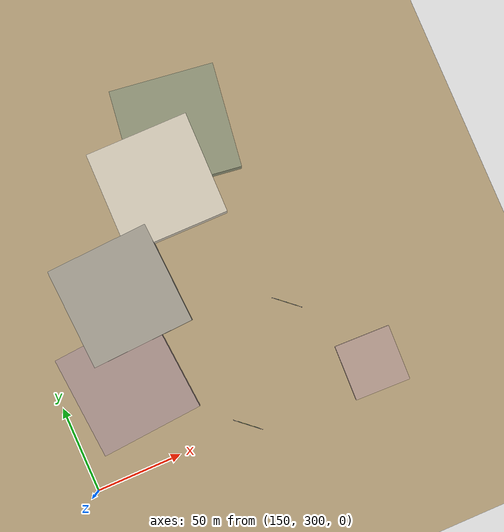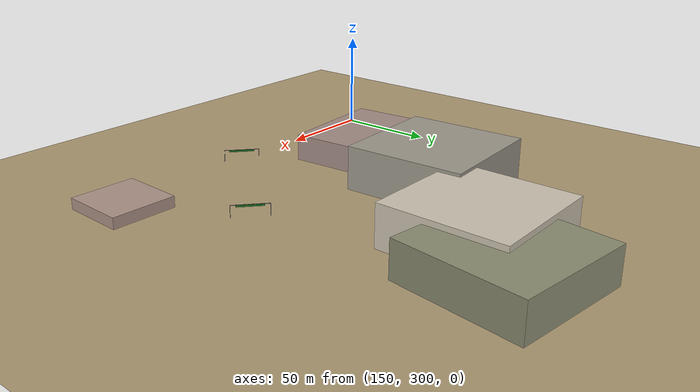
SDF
<sdf version="1.9">
 <world name="crossroad_world">
  <model name="ground_plane">
   <static>true</static>
   <pose>0 0 -0.05 0 0 0</pose>
   <link name="link">
    <collision name="collision">
     <geometry><plane><normal>0 0 1</normal><size>10000 10000</size></plane></geometry>
    </collision>
    <visual name="visual">
     <geometry><plane><normal>0 0 1</normal><size>15000 15000</size></plane></geometry>
     <material><ambient>0.68 0.60 0.45 1</ambient><diffuse>0.68 0.60 0.45 1</diffuse></material>
    </visual>
   </link>
  </model>
  <model name="gantry_72">
   <static>true</static>
   <pose>242.040 300.201 0 0 0 2.426</pose>
   <link name="link">
    <visual name="post_l">
     <pose>-8.900 0 2.925 0 0 0</pose>
     <geometry><cylinder><radius>0.1</radius><length>5.85</length></cylinder></geometry>
     <material><ambient>0.30 0.30 0.35 1</ambient><diffuse>0.30 0.30 0.35 1</diffuse></material>
    </visual>
    <visual name="post_r">
     <pose>8.900 0 2.925 0 0 0</pose>
     <geometry><cylinder><radius>0.1</radius><length>5.85</length></cylinder></geometry>
     <material><ambient>0.30 0.30 0.35 1</ambient><diffuse>0.30 0.30 0.35 1</diffuse></material>
    </visual>
    <visual name="beam">
     <pose>0 0 6.000 0 0 0</pose>
     <geometry><box><size>17.800 0.22 0.22</size></box></geometry>
     <material><ambient>0.30 0.30 0.35 1</ambient><diffuse>0.30 0.30 0.35 1</diffuse></material>
    </visual>
    <visual name="sign_border">
     <pose>0 -0.14 5.450 0 0 0</pose>
     <geometry><box><size>12.896 0.04 0.92</size></box></geometry>
     <material><ambient>0.90 0.85 0.10 1</ambient><diffuse>0.90 0.85 0.10 1</diffuse></material>
    </visual>
    <visual name="sign_panel">
     <pose>0 -0.15 5.450 0 0 0</pose>
     <geometry><box><size>12.816 0.05 0.86</size></box></geometry>
     <material><ambient>0.05 0.38 0.10 1</ambient><diffuse>0.05 0.38 0.10 1</diffuse></material>
    </visual>
    <collision name="col_post_l">
     <pose>-8.900 0 2.925 0 0 0</pose>
     <geometry><cylinder><radius>0.1</radius><length>5.85</length></cylinder></geometry>
    </collision>
    <collision name="col_post_r">
     <pose>8.900 0 2.925 0 0 0</pose>
     <geometry><cylinder><radius>0.1</radius><length>5.85</length></cylinder></geometry>
    </collision>
    <collision name="col_beam">
     <pose>0 0 6.000 0 0 0</pose>
     <geometry><box><size>17.800 0.22 0.22</size></box></geometry>
    </collision>
   </link>
  </model>
  <model name="gantry_85">
   <static>true</static>
   <pose>289.326 354.461 0 0 0 2.425</pose>
   <link name="link">
    <visual name="post_l">
     <pose>-8.900 0 2.925 0 0 0</pose>
     <geometry><cylinder><radius>0.1</radius><length>5.85</length></cylinder></geometry>
     <material><ambient>0.30 0.30 0.35 1</ambient><diffuse>0.30 0.30 0.35 1</diffuse></material>
    </visual>
    <visual name="post_r">
     <pose>8.900 0 2.925 0 0 0</pose>
     <geometry><cylinder><radius>0.1</radius><length>5.85</length></cylinder></geometry>
     <material><ambient>0.30 0.30 0.35 1</ambient><diffuse>0.30 0.30 0.35 1</diffuse></material>
    </visual>
    <visual name="beam">
     <pose>0 0 6.000 0 0 0</pose>
     <geometry><box><size>17.800 0.22 0.22</size></box></geometry>
     <material><ambient>0.30 0.30 0.35 1</ambient><diffuse>0.30 0.30 0.35 1</diffuse></material>
    </visual>
    <visual name="sign_border">
     <pose>0 -0.14 5.450 0 0 0</pose>
     <geometry><box><size>12.896 0.04 0.92</size></box></geometry>
     <material><ambient>0.90 0.85 0.10 1</ambient><diffuse>0.90 0.85 0.10 1</diffuse></material>
    </visual>
    <visual name="sign_panel">
     <pose>0 -0.15 5.450 0 0 0</pose>
     <geometry><box><size>12.816 0.05 0.86</size></box></geometry>
     <material><ambient>0.05 0.38 0.10 1</ambient><diffuse>0.05 0.38 0.10 1</diffuse></material>
    </visual>
    <collision name="col_post_l">
     <pose>-8.900 0 2.925 0 0 0</pose>
     <geometry><cylinder><radius>0.1</radius><length>5.85</length></cylinder></geometry>
    </collision>
    <collision name="col_post_r">
     <pose>8.900 0 2.925 0 0 0</pose>
     <geometry><cylinder><radius>0.1</radius><length>5.85</length></cylinder></geometry>
    </collision>
    <collision name="col_beam">
     <pose>0 0 6.000 0 0 0</pose>
     <geometry><box><size>17.800 0.22 0.22</size></box></geometry>
    </collision>
   </link>
  </model>
  <model name="building_588">
   <static>true</static>
   <pose>270.630 467.859 8.749 0 0 -0.138</pose>
   <link name="link">
    <visual name="body">
     <geometry><box><size>60.00 60.00 17.50</size></box></geometry>
     <material><ambient>0.55 0.56 0.45 1</ambient><diffuse>0.55 0.56 0.45 1</diffuse></material>
    </visual>
    <collision name="col"><geometry><box><size>60.00 60.00 17.50</size></box></geometry></collision>
   </link>
  </model>
  <model name="building_589">
   <static>true</static>
   <pose>249.142 444.175 10.098 0 0 -0.009</pose>
   <link name="link">
    <visual name="body">
     <geometry><box><size>60.00 59.28 20.20</size></box></geometry>
     <material><ambient>0.81 0.77 0.70 1</ambient><diffuse>0.81 0.77 0.70 1</diffuse></material>
    </visual>
    <collision name="col"><geometry><box><size>60.00 59.28 20.20</size></box></geometry></collision>
   </link>
  </model>
  <model name="building_590">
   <static>true</static>
   <pose>205.400 394.908 10.854 0 0 0.047</pose>
   <link name="link">
    <visual name="body">
     <geometry><box><size>60.00 59.23 21.71</size></box></geometry>
     <material><ambient>0.62 0.60 0.55 1</ambient><diffuse>0.62 0.60 0.55 1</diffuse></material>
    </visual>
    <collision name="col"><geometry><box><size>60.00 59.23 21.71</size></box></geometry></collision>
   </link>
  </model>
  <model name="building_592">
   <static>true</static>
   <pose>189.515 348.763 6.759 0 0 0.077</pose>
   <link name="link">
    <visual name="body">
     <geometry><box><size>59.50 60.00 13.52</size></box></geometry>
     <material><ambient>0.64 0.55 0.52 1</ambient><diffuse>0.64 0.55 0.52 1</diffuse></material>
    </visual>
    <collision name="col"><geometry><box><size>59.50 60.00 13.52</size></box></geometry></collision>
   </link>
  </model>
  <model name="building_600">
   <static>true</static>
   <pose>319.672 304.289 2.770 0 0 -0.032</pose>
   <link name="link">
    <visual name="body">
     <geometry><box><size>32.38 32.26 5.54</size></box></geometry>
     <material><ambient>0.68 0.58 0.53 1</ambient><diffuse>0.68 0.58 0.53 1</diffuse></material>
    </visual>
    <collision name="col"><geometry><box><size>32.38 32.26 5.54</size></box></geometry></collision>
   </link>
  </model>
 </world>
</sdf>
